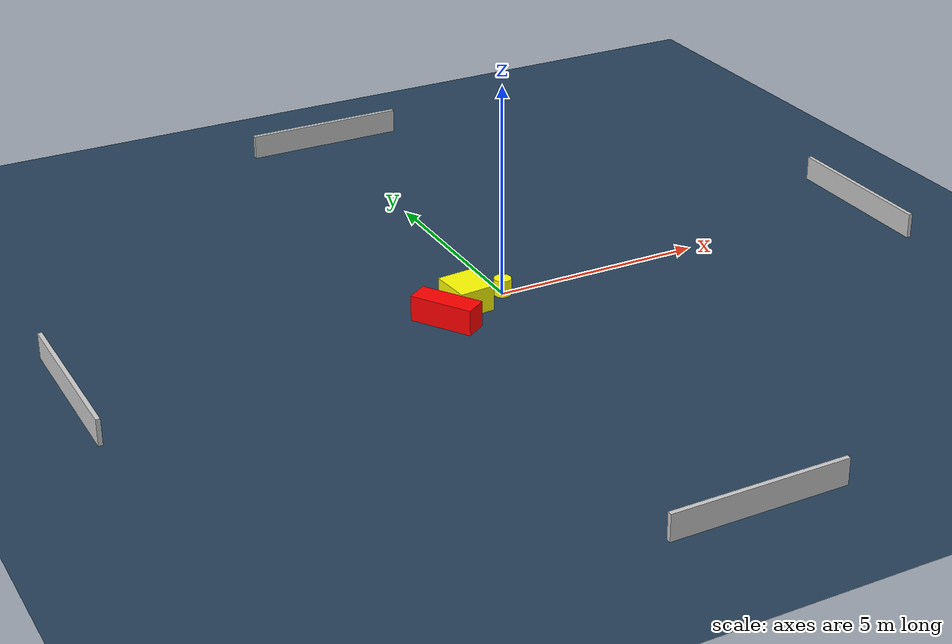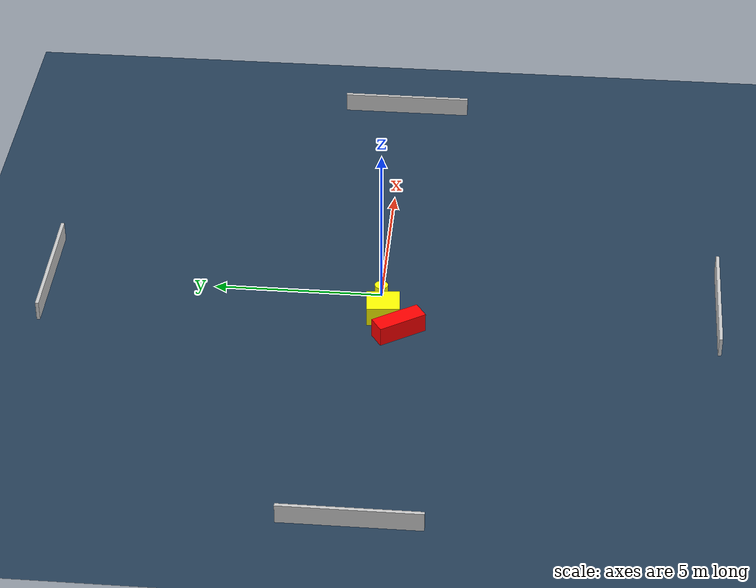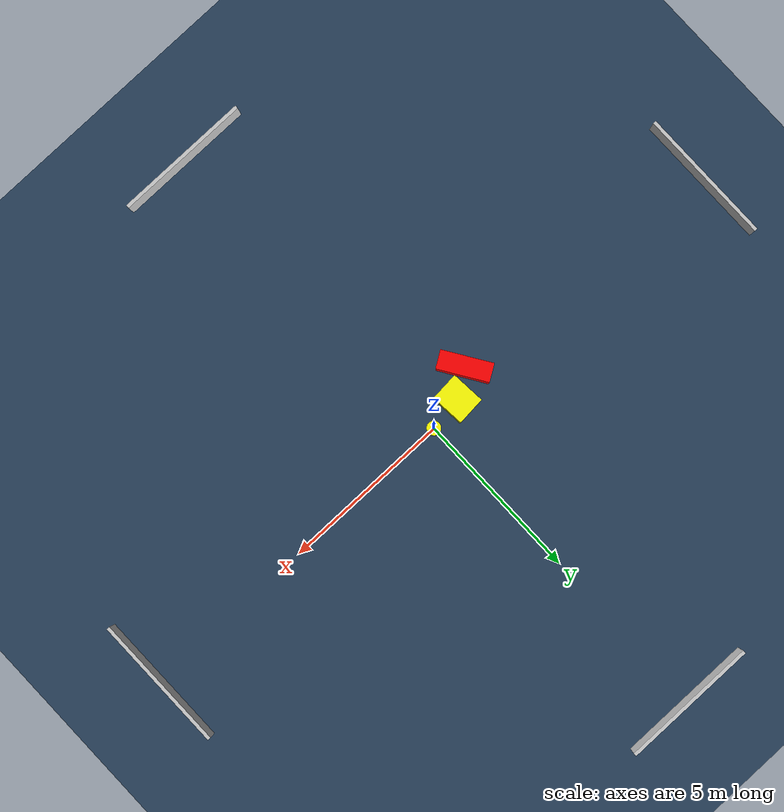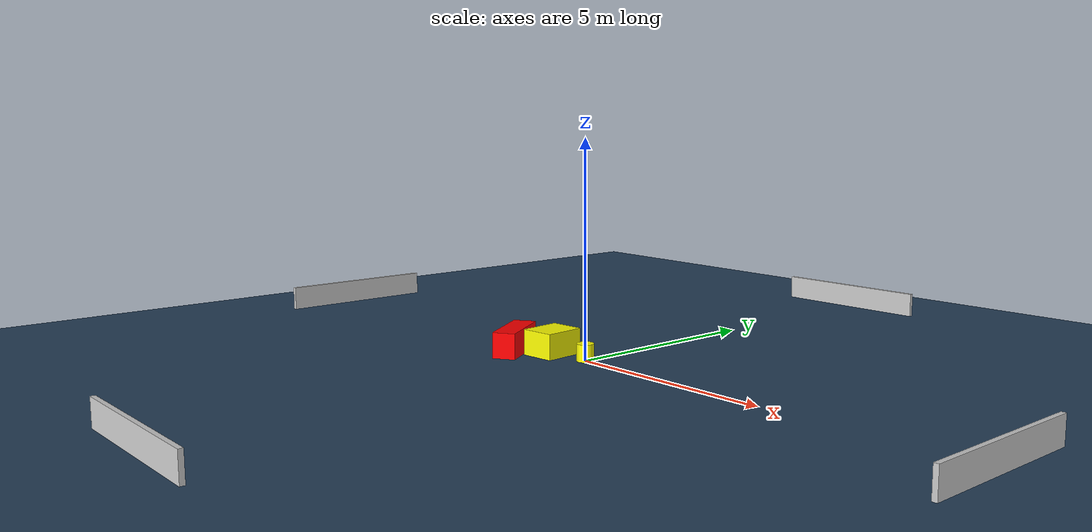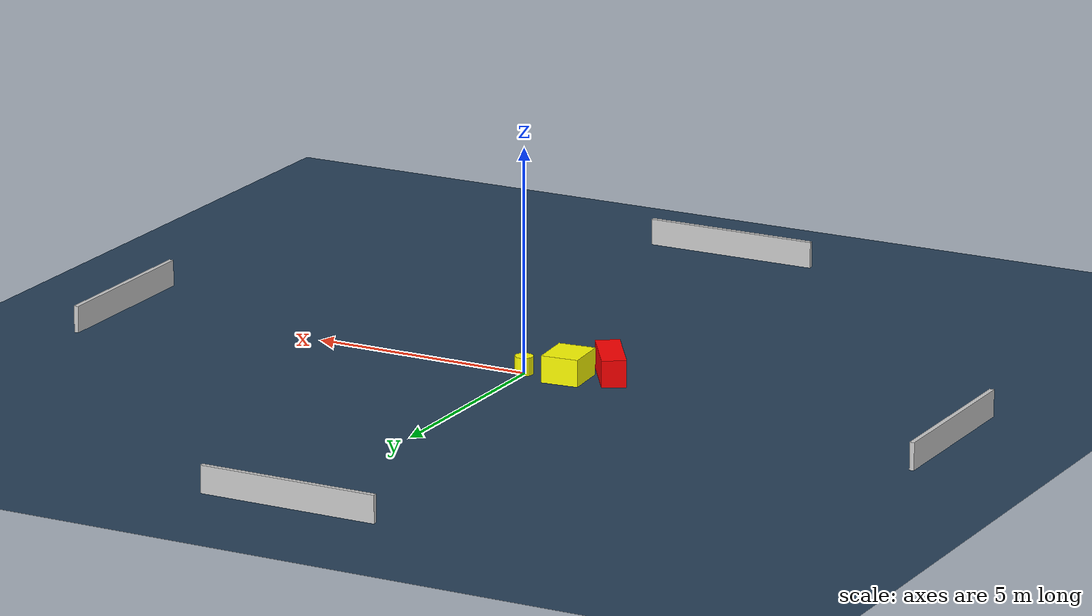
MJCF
<?xml version="1.0" ?>
<mujoco model="generated_environment">
  <option timestep="0.01" integrator="RK4" cone="elliptic"/>
  <default>
    <geom density="1"/>
  </default>
  <asset>
    <texture builtin="gradient" height="3072" name="skybox" rgb1="0.3 0.5 0.7" rgb2="0 0 0" type="skybox" width="512"/>
    <texture builtin="checker" height="300" name="groundplane" rgb1="0.2 0.3 0.4" rgb2="0.1 0.2 0.3" type="2d" width="300"/>
    <material name="groundplane" reflectance="0.2" texrepeat="5 5" texture="groundplane"/>
  </asset>
  <worldbody>
    <light dir="0 0 -1" directional="true" pos="0 0 1.5"/>
    <geom condim="3" friction="0.5 0.005 0.001" material="groundplane" name="floor" pos="0 0 0" size="0 0 0.05" type="plane"/>
    <body name="walls">
      <geom name="wall_1" condim="4" pos="-10.0 0.0 0.3" rgba="0.800000011920929 0.800000011920929 0.800000011920929 1.0" size="0.05 2.0 0.3" type="box"/>
      <geom name="wall_2" condim="4" pos="10.0 0.0 0.3" rgba="0.800000011920929 0.800000011920929 0.800000011920929 1.0" size="0.05 2.0 0.3" type="box"/>
      <geom name="wall_3" condim="4" pos="0.0 -10.0 0.3" rgba="0.800000011920929 0.800000011920929 0.800000011920929 1.0" size="2.0 0.05 0.3" type="box"/>
      <geom name="wall_4" condim="4" pos="0.0 10.0 0.3" rgba="0.800000011920929 0.800000011920929 0.800000011920929 1.0" size="2.0 0.05 0.3" type="box"/>
    </body>
    <body name="robot">
      <joint name="joint_x" type="slide" pos="0 0 0" axis="1 0 0"/>
      <joint name="joint_y" type="slide" pos="0 0 0" axis="0 1 0"/>
      <geom name="robot" type="cylinder" pos="0.0 0.0 0.2" size="0.2 0.2 0.0" mass="5.0" friction="1.0 0.005 0.0001" condim="4" rgba="1.0 1.0 0.0 1.0"/>
    </body>
    <body name="obstacle_1_movable">
      <geom name="obstacle_1_movable" condim="4" pos="-0.995674317508484 -0.13684436168799619 0.3" euler="0 0 94.74504351478345" friction="0.0 0.005 0.001" rgba="1.0 1.0 0.0 1.0" size="0.4919058858837346 0.41881941107197473 0.3" type="box" mass="0.1"/>
      <joint type="free"/>
    </body>
    <body name="obstacle_2_static">
      <geom name="obstacle_2_static" condim="4" pos="-1.7443743139403145 -0.6523025763196096 0.3" euler="0 0 302.79764417973286" friction="0.0 0.005 0.001" rgba="1.0 0.0 0.0 1.0" size="0.7510497104715195 0.26991815261619945 0.3" type="box"/>
    </body>
  </worldbody>
  <actuator>
    <motor name="actuator_x" joint="joint_x" gear="1" ctrlrange="-1 1"/>
    <motor name="actuator_y" joint="joint_y" gear="1" ctrlrange="-1 1"/>
  </actuator>
</mujoco>
